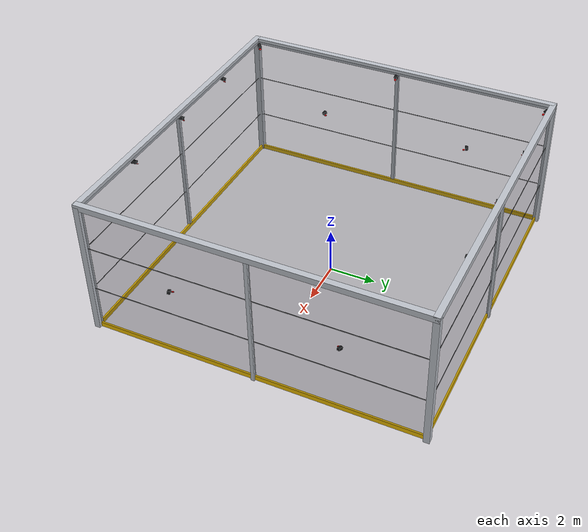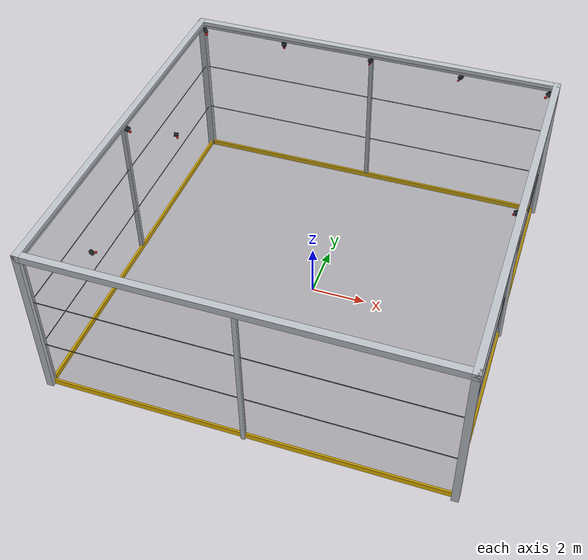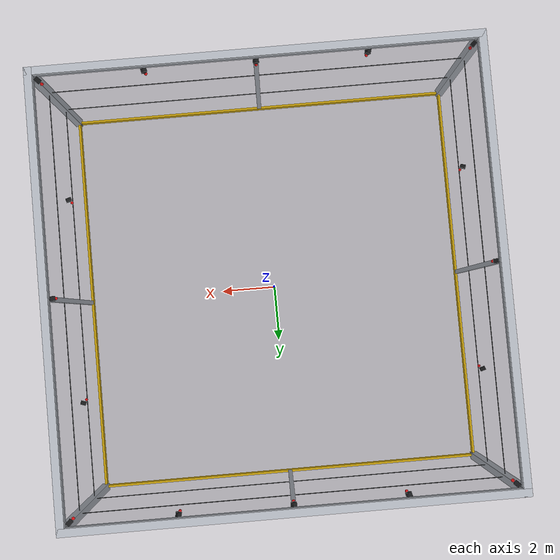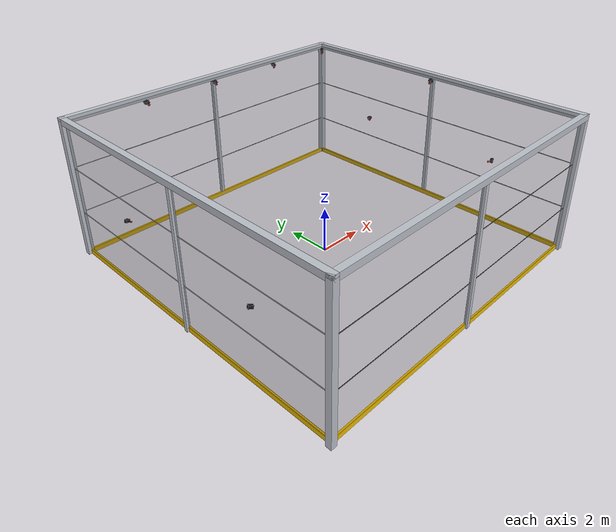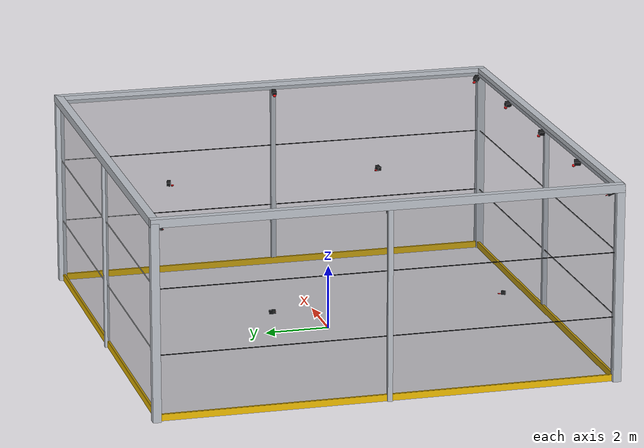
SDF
<sdf version="1.9">
 <world name="bicopter_world">
  <model name="drone_flight_net_cage">
   <static>true</static>
   <link name="link">
    <collision name="t_ne_col">
     <pose>7.0 7.0 3.0 0 0 0</pose>
     <geometry><box><size>0.25 0.25 6.0</size></box></geometry>
    </collision>
    <visual name="t_ne">
     <pose>7.0 7.0 3.0 0 0 0</pose>
     <geometry><box><size>0.25 0.25 6.0</size></box></geometry>
     <material>
      <ambient>0.75 0.77 0.80 1</ambient>
      <diffuse>0.75 0.77 0.80 1</diffuse>
      <specular>0.7 0.7 0.7 1</specular>
     </material>
    </visual>
    <collision name="t_nw_col">
     <pose>-7.0 7.0 3.0 0 0 0</pose>
     <geometry><box><size>0.25 0.25 6.0</size></box></geometry>
    </collision>
    <visual name="t_nw">
     <pose>-7.0 7.0 3.0 0 0 0</pose>
     <geometry><box><size>0.25 0.25 6.0</size></box></geometry>
     <material>
      <ambient>0.75 0.77 0.80 1</ambient>
      <diffuse>0.75 0.77 0.80 1</diffuse>
      <specular>0.7 0.7 0.7 1</specular>
     </material>
    </visual>
    <collision name="t_se_col">
     <pose>7.0 -7.0 3.0 0 0 0</pose>
     <geometry><box><size>0.25 0.25 6.0</size></box></geometry>
    </collision>
    <visual name="t_se">
     <pose>7.0 -7.0 3.0 0 0 0</pose>
     <geometry><box><size>0.25 0.25 6.0</size></box></geometry>
     <material>
      <ambient>0.75 0.77 0.80 1</ambient>
      <diffuse>0.75 0.77 0.80 1</diffuse>
      <specular>0.7 0.7 0.7 1</specular>
     </material>
    </visual>
    <collision name="t_sw_col">
     <pose>-7.0 -7.0 3.0 0 0 0</pose>
     <geometry><box><size>0.25 0.25 6.0</size></box></geometry>
    </collision>
    <visual name="t_sw">
     <pose>-7.0 -7.0 3.0 0 0 0</pose>
     <geometry><box><size>0.25 0.25 6.0</size></box></geometry>
     <material>
      <ambient>0.75 0.77 0.80 1</ambient>
      <diffuse>0.75 0.77 0.80 1</diffuse>
      <specular>0.7 0.7 0.7 1</specular>
     </material>
    </visual>
    <visual name="t_mid_n">
     <pose>0 7.0 3.0 0 0 0</pose>
     <geometry><box><size>0.15 0.15 6.0</size></box></geometry>
     <material><ambient>0.75 0.77 0.80 1</ambient><diffuse>0.75 0.77 0.80 1</diffuse></material>
    </visual>
    <visual name="t_mid_s">
     <pose>0 -7.0 3.0 0 0 0</pose>
     <geometry><box><size>0.15 0.15 6.0</size></box></geometry>
     <material><ambient>0.75 0.77 0.80 1</ambient><diffuse>0.75 0.77 0.80 1</diffuse></material>
    </visual>
    <visual name="t_mid_e">
     <pose>7.0 0 3.0 0 0 0</pose>
     <geometry><box><size>0.15 0.15 6.0</size></box></geometry>
     <material><ambient>0.75 0.77 0.80 1</ambient><diffuse>0.75 0.77 0.80 1</diffuse></material>
    </visual>
    <visual name="t_mid_w">
     <pose>-7.0 0 3.0 0 0 0</pose>
     <geometry><box><size>0.15 0.15 6.0</size></box></geometry>
     <material><ambient>0.75 0.77 0.80 1</ambient><diffuse>0.75 0.77 0.80 1</diffuse></material>
    </visual>
    <collision name="truss_ring_n">
     <pose>0 7.0 6.0 0 0 0</pose>
     <geometry><box><size>14.25 0.25 0.25</size></box></geometry>
    </collision>
    <visual name="truss_rn">
     <pose>0 7.0 6.0 0 0 0</pose>
     <geometry><box><size>14.25 0.25 0.25</size></box></geometry>
     <material><ambient>0.75 0.77 0.80 1</ambient><diffuse>0.75 0.77 0.80 1</diffuse></material>
    </visual>
    <collision name="truss_ring_s">
     <pose>0 -7.0 6.0 0 0 0</pose>
     <geometry><box><size>14.25 0.25 0.25</size></box></geometry>
    </collision>
    <visual name="truss_rs">
     <pose>0 -7.0 6.0 0 0 0</pose>
     <geometry><box><size>14.25 0.25 0.25</size></box></geometry>
     <material><ambient>0.75 0.77 0.80 1</ambient><diffuse>0.75 0.77 0.80 1</diffuse></material>
    </visual>
    <collision name="truss_ring_e">
     <pose>7.0 0 6.0 0 0 0</pose>
     <geometry><box><size>0.25 14.25 0.25</size></box></geometry>
    </collision>
    <visual name="truss_re">
     <pose>7.0 0 6.0 0 0 0</pose>
     <geometry><box><size>0.25 14.25 0.25</size></box></geometry>
     <material><ambient>0.75 0.77 0.80 1</ambient><diffuse>0.75 0.77 0.80 1</diffuse></material>
    </visual>
    <collision name="truss_ring_w">
     <pose>-7.0 0 6.0 0 0 0</pose>
     <geometry><box><size>0.25 14.25 0.25</size></box></geometry>
    </collision>
    <visual name="truss_rw">
     <pose>-7.0 0 6.0 0 0 0</pose>
     <geometry><box><size>0.25 14.25 0.25</size></box></geometry>
     <material><ambient>0.75 0.77 0.80 1</ambient><diffuse>0.75 0.77 0.80 1</diffuse></material>
    </visual>
    <visual name="net_north">
     <pose>0 6.98 2.95 0 0 0</pose>
     <geometry><box><size>13.8 0.01 5.9</size></box></geometry>
     <material><ambient>0.15 0.17 0.20 0.26</ambient><diffuse>0.15 0.17 0.20 0.26</diffuse></material>
    </visual>
    <visual name="net_east">
     <pose>6.98 0 2.95 0 0 0</pose>
     <geometry><box><size>0.01 13.8 5.9</size></box></geometry>
     <material><ambient>0.15 0.17 0.20 0.26</ambient><diffuse>0.15 0.17 0.20 0.26</diffuse></material>
    </visual>
    <visual name="net_west">
     <pose>-6.98 0 2.95 0 0 0</pose>
     <geometry><box><size>0.01 13.8 5.9</size></box></geometry>
     <material><ambient>0.15 0.17 0.20 0.26</ambient><diffuse>0.15 0.17 0.20 0.26</diffuse></material>
    </visual>
    <visual name="net_south">
     <pose>0 -6.98 2.95 0 0 0</pose>
     <geometry><box><size>13.8 0.01 5.9</size></box></geometry>
     <material><ambient>0.18 0.20 0.22 0.20</ambient><diffuse>0.18 0.20 0.22 0.20</diffuse></material>
    </visual>
    <visual name="net_top">
     <pose>0 0 5.98 0 0 0</pose>
     <geometry><box><size>13.8 13.8 0.01</size></box></geometry>
     <material><ambient>0.15 0.17 0.20 0.18</ambient><diffuse>0.15 0.17 0.20 0.18</diffuse></material>
    </visual>
    <visual name="cab_n1">
     <pose>0 6.97 2.0 0 0 0</pose>
     <geometry><box><size>13.8 0.02 0.02</size></box></geometry>
     <material><ambient>0.1 0.1 0.1 1</ambient><diffuse>0.1 0.1 0.1 1</diffuse></material>
    </visual>
    <visual name="cab_n2">
     <pose>0 6.97 4.0 0 0 0</pose>
     <geometry><box><size>13.8 0.02 0.02</size></box></geometry>
     <material><ambient>0.1 0.1 0.1 1</ambient><diffuse>0.1 0.1 0.1 1</diffuse></material>
    </visual>
    <visual name="cab_s1">
     <pose>0 -6.97 2.0 0 0 0</pose>
     <geometry><box><size>13.8 0.02 0.02</size></box></geometry>
     <material><ambient>0.1 0.1 0.1 1</ambient><diffuse>0.1 0.1 0.1 1</diffuse></material>
    </visual>
    <visual name="cab_s2">
     <pose>0 -6.97 4.0 0 0 0</pose>
     <geometry><box><size>13.8 0.02 0.02</size></box></geometry>
     <material><ambient>0.1 0.1 0.1 1</ambient><diffuse>0.1 0.1 0.1 1</diffuse></material>
    </visual>
    <visual name="cab_e1">
     <pose>6.97 0 2.0 0 0 0</pose>
     <geometry><box><size>0.02 13.8 0.02</size></box></geometry>
     <material><ambient>0.1 0.1 0.1 1</ambient><diffuse>0.1 0.1 0.1 1</diffuse></material>
    </visual>
    <visual name="cab_e2">
     <pose>6.97 0 4.0 0 0 0</pose>
     <geometry><box><size>0.02 13.8 0.02</size></box></geometry>
     <material><ambient>0.1 0.1 0.1 1</ambient><diffuse>0.1 0.1 0.1 1</diffuse></material>
    </visual>
    <visual name="cab_w1">
     <pose>-6.97 0 2.0 0 0 0</pose>
     <geometry><box><size>0.02 13.8 0.02</size></box></geometry>
     <material><ambient>0.1 0.1 0.1 1</ambient><diffuse>0.1 0.1 0.1 1</diffuse></material>
    </visual>
    <visual name="cab_w2">
     <pose>-6.97 0 4.0 0 0 0</pose>
     <geometry><box><size>0.02 13.8 0.02</size></box></geometry>
     <material><ambient>0.1 0.1 0.1 1</ambient><diffuse>0.1 0.1 0.1 1</diffuse></material>
    </visual>
    <visual name="skirt_n">
     <pose>0 6.96 0.1 0 0 0</pose>
     <geometry><box><size>13.9 0.08 0.2</size></box></geometry>
     <material><ambient>0.95 0.75 0 1</ambient><diffuse>0.95 0.75 0 1</diffuse></material>
    </visual>
    <visual name="skirt_s">
     <pose>0 -6.96 0.1 0 0 0</pose>
     <geometry><box><size>13.9 0.08 0.2</size></box></geometry>
     <material><ambient>0.95 0.75 0 1</ambient><diffuse>0.95 0.75 0 1</diffuse></material>
    </visual>
    <visual name="skirt_e">
     <pose>6.96 0 0.1 0 0 0</pose>
     <geometry><box><size>0.08 13.9 0.2</size></box></geometry>
     <material><ambient>0.95 0.75 0 1</ambient><diffuse>0.95 0.75 0 1</diffuse></material>
    </visual>
    <visual name="skirt_w">
     <pose>-6.96 0 0.1 0 0 0</pose>
     <geometry><box><size>0.08 13.9 0.2</size></box></geometry>
     <material><ambient>0.95 0.75 0 1</ambient><diffuse>0.95 0.75 0 1</diffuse></material>
    </visual>
    <visual name="c1_b">
     <pose>6.8 6.8 5.8 0 0.5 -2.356</pose>
     <geometry><box><size>0.20 0.14 0.14</size></box></geometry>
     <material><ambient>0.1 0.1 0.1 1</ambient><diffuse>0.1 0.1 0.1 1</diffuse></material>
    </visual>
    <visual name="c1_ir">
     <pose>6.7 6.7 5.7 0 0.5 -2.356</pose>
     <geometry><cylinder><radius>0.05</radius><length>0.02</length></cylinder></geometry>
     <material>
      <ambient>1 0.05 0.05 1</ambient>
      <diffuse>1 0.05 0.05 1</diffuse>
      <emissive>1 0.05 0.05 1</emissive>
     </material>
    </visual>
    <visual name="c2_b">
     <pose>-6.8 6.8 5.8 0 0.5 -0.785</pose>
     <geometry><box><size>0.20 0.14 0.14</size></box></geometry>
     <material><ambient>0.1 0.1 0.1 1</ambient><diffuse>0.1 0.1 0.1 1</diffuse></material>
    </visual>
    <visual name="c2_ir">
     <pose>-6.7 6.7 5.7 0 0.5 -0.785</pose>
     <geometry><cylinder><radius>0.05</radius><length>0.02</length></cylinder></geometry>
     <material>
      <ambient>1 0.05 0.05 1</ambient>
      <diffuse>1 0.05 0.05 1</diffuse>
      <emissive>1 0.05 0.05 1</emissive>
     </material>
    </visual>
    <visual name="c3_b">
     <pose>6.8 -6.8 5.8 0 0.5 2.356</pose>
     <geometry><box><size>0.20 0.14 0.14</size></box></geometry>
     <material><ambient>0.1 0.1 0.1 1</ambient><diffuse>0.1 0.1 0.1 1</diffuse></material>
    </visual>
    <visual name="c3_ir">
     <pose>6.7 -6.7 5.7 0 0.5 2.356</pose>
     <geometry><cylinder><radius>0.05</radius><length>0.02</length></cylinder></geometry>
     <material>
      <ambient>1 0.05 0.05 1</ambient>
      <diffuse>1 0.05 0.05 1</diffuse>
      <emissive>1 0.05 0.05 1</emissive>
     </material>
    </visual>
    <visual name="c4_b">
     <pose>-6.8 -6.8 5.8 0 0.5 0.785</pose>
     <geometry><box><size>0.20 0.14 0.14</size></box></geometry>
     <material><ambient>0.1 0.1 0.1 1</ambient><diffuse>0.1 0.1 0.1 1</diffuse></material>
    </visual>
    <visual name="c4_ir">
     <pose>-6.7 -6.7 5.7 0 0.5 0.785</pose>
     <geometry><cylinder><radius>0.05</radius><length>0.02</length></cylinder></geometry>
     <material>
      <ambient>1 0.05 0.05 1</ambient>
      <diffuse>1 0.05 0.05 1</diffuse>
      <emissive>1 0.05 0.05 1</emissive>
     </material>
    </visual>
    <visual name="c5_b">
     <pose>0 6.85 5.8 0.5 0 -1.5708</pose>
     <geometry><box><size>0.20 0.14 0.14</size></box></geometry>
     <material><ambient>0.1 0.1 0.1 1</ambient><diffuse>0.1 0.1 0.1 1</diffuse></material>
    </visual>
    <visual name="c5_ir">
     <pose>0 6.75 5.7 0.5 0 -1.5708</pose>
     <geometry><cylinder><radius>0.05</radius><length>0.02</length></cylinder></geometry>
     <material>
      <ambient>1 0.05 0.05 1</ambient>
      <diffuse>1 0.05 0.05 1</diffuse>
      <emissive>1 0.05 0.05 1</emissive>
     </material>
    </visual>
    <visual name="c6_b">
     <pose>0 -6.85 5.8 -0.5 0 1.5708</pose>
     <geometry><box><size>0.20 0.14 0.14</size></box></geometry>
     <material><ambient>0.1 0.1 0.1 1</ambient><diffuse>0.1 0.1 0.1 1</diffuse></material>
    </visual>
    <visual name="c6_ir">
     <pose>0 -6.75 5.7 -0.5 0 1.5708</pose>
     <geometry><cylinder><radius>0.05</radius><length>0.02</length></cylinder></geometry>
     <material>
      <ambient>1 0.05 0.05 1</ambient>
      <diffuse>1 0.05 0.05 1</diffuse>
      <emissive>1 0.05 0.05 1</emissive>
     </material>
    </visual>
    <visual name="c7_b">
     <pose>6.85 0 5.8 0 0.5 3.1415</pose>
     <geometry><box><size>0.20 0.14 0.14</size></box></geometry>
     <material><ambient>0.1 0.1 0.1 1</ambient><diffuse>0.1 0.1 0.1 1</diffuse></material>
    </visual>
    <visual name="c7_ir">
     <pose>6.75 0 5.7 0 0.5 3.1415</pose>
     <geometry><cylinder><radius>0.05</radius><length>0.02</length></cylinder></geometry>
     <material>
      <ambient>1 0.05 0.05 1</ambient>
      <diffuse>1 0.05 0.05 1</diffuse>
      <emissive>1 0.05 0.05 1</emissive>
     </material>
    </visual>
    <visual name="c8_b">
     <pose>-6.85 0 5.8 0 0.5 0</pose>
     <geometry><box><size>0.20 0.14 0.14</size></box></geometry>
     <material><ambient>0.1 0.1 0.1 1</ambient><diffuse>0.1 0.1 0.1 1</diffuse></material>
    </visual>
    <visual name="c8_ir">
     <pose>-6.75 0 5.7 0 0.5 0</pose>
     <geometry><cylinder><radius>0.05</radius><length>0.02</length></cylinder></geometry>
     <material>
      <ambient>1 0.05 0.05 1</ambient>
      <diffuse>1 0.05 0.05 1</diffuse>
      <emissive>1 0.05 0.05 1</emissive>
     </material>
    </visual>
    <visual name="c9_b">
     <pose>3.5 6.85 5.8 0.5 0 -1.8</pose>
     <geometry><box><size>0.20 0.14 0.14</size></box></geometry>
     <material><ambient>0.1 0.1 0.1 1</ambient><diffuse>0.1 0.1 0.1 1</diffuse></material>
    </visual>
    <visual name="c9_ir">
     <pose>3.45 6.75 5.7 0.5 0 -1.8</pose>
     <geometry><cylinder><radius>0.05</radius><length>0.02</length></cylinder></geometry>
     <material>
      <ambient>1 0.05 0.05 1</ambient>
      <diffuse>1 0.05 0.05 1</diffuse>
      <emissive>1 0.05 0.05 1</emissive>
     </material>
    </visual>
    <visual name="c10_b">
     <pose>-3.5 6.85 5.8 0.5 0 -1.3</pose>
     <geometry><box><size>0.20 0.14 0.14</size></box></geometry>
     <material><ambient>0.1 0.1 0.1 1</ambient><diffuse>0.1 0.1 0.1 1</diffuse></material>
    </visual>
    <visual name="c10_ir">
     <pose>-3.45 6.75 5.7 0.5 0 -1.3</pose>
     <geometry><cylinder><radius>0.05</radius><length>0.02</length></cylinder></geometry>
     <material>
      <ambient>1 0.05 0.05 1</ambient>
      <diffuse>1 0.05 0.05 1</diffuse>
      <emissive>1 0.05 0.05 1</emissive>
     </material>
    </visual>
    <visual name="c11_b">
     <pose>3.5 -6.85 5.8 -0.5 0 1.8</pose>
     <geometry><box><size>0.20 0.14 0.14</size></box></geometry>
     <material><ambient>0.1 0.1 0.1 1</ambient><diffuse>0.1 0.1 0.1 1</diffuse></material>
    </visual>
    <visual name="c11_ir">
     <pose>3.45 -6.75 5.7 -0.5 0 1.8</pose>
     <geometry><cylinder><radius>0.05</radius><length>0.02</length></cylinder></geometry>
     <material>
      <ambient>1 0.05 0.05 1</ambient>
      <diffuse>1 0.05 0.05 1</diffuse>
      <emissive>1 0.05 0.05 1</emissive>
     </material>
    </visual>
    <visual name="c12_b">
     <pose>-3.5 -6.85 5.8 -0.5 0 1.3</pose>
     <geometry><box><size>0.20 0.14 0.14</size></box></geometry>
     <material><ambient>0.1 0.1 0.1 1</ambient><diffuse>0.1 0.1 0.1 1</diffuse></material>
    </visual>
    <visual name="c12_ir">
     <pose>-3.45 -6.75 5.7 -0.5 0 1.3</pose>
     <geometry><cylinder><radius>0.05</radius><length>0.02</length></cylinder></geometry>
     <material>
      <ambient>1 0.05 0.05 1</ambient>
      <diffuse>1 0.05 0.05 1</diffuse>
      <emissive>1 0.05 0.05 1</emissive>
     </material>
    </visual>
    <visual name="c13_b">
     <pose>6.85 3.5 3.0 0 0.25 2.8</pose>
     <geometry><box><size>0.18 0.12 0.12</size></box></geometry>
     <material><ambient>0.1 0.1 0.1 1</ambient><diffuse>0.1 0.1 0.1 1</diffuse></material>
    </visual>
    <visual name="c13_ir">
     <pose>6.75 3.4 2.95 0 0.25 2.8</pose>
     <geometry><cylinder><radius>0.045</radius><length>0.02</length></cylinder></geometry>
     <material>
      <ambient>1 0.05 0.05 1</ambient>
      <diffuse>1 0.05 0.05 1</diffuse>
      <emissive>1 0.05 0.05 1</emissive>
     </material>
    </visual>
    <visual name="c14_b">
     <pose>6.85 -3.5 3.0 0 0.25 -2.8</pose>
     <geometry><box><size>0.18 0.12 0.12</size></box></geometry>
     <material><ambient>0.1 0.1 0.1 1</ambient><diffuse>0.1 0.1 0.1 1</diffuse></material>
    </visual>
    <visual name="c14_ir">
     <pose>6.75 -3.4 2.95 0 0.25 -2.8</pose>
     <geometry><cylinder><radius>0.045</radius><length>0.02</length></cylinder></geometry>
     <material>
      <ambient>1 0.05 0.05 1</ambient>
      <diffuse>1 0.05 0.05 1</diffuse>
      <emissive>1 0.05 0.05 1</emissive>
     </material>
    </visual>
    <visual name="c15_b">
     <pose>-6.85 3.5 3.0 0 0.25 0.35</pose>
     <geometry><box><size>0.18 0.12 0.12</size></box></geometry>
     <material><ambient>0.1 0.1 0.1 1</ambient><diffuse>0.1 0.1 0.1 1</diffuse></material>
    </visual>
    <visual name="c15_ir">
     <pose>-6.75 3.4 2.95 0 0.25 0.35</pose>
     <geometry><cylinder><radius>0.045</radius><length>0.02</length></cylinder></geometry>
     <material>
      <ambient>1 0.05 0.05 1</ambient>
      <diffuse>1 0.05 0.05 1</diffuse>
      <emissive>1 0.05 0.05 1</emissive>
     </material>
    </visual>
    <visual name="c16_b">
     <pose>-6.85 -3.5 3.0 0 0.25 -0.35</pose>
     <geometry><box><size>0.18 0.12 0.12</size></box></geometry>
     <material><ambient>0.1 0.1 0.1 1</ambient><diffuse>0.1 0.1 0.1 1</diffuse></material>
    </visual>
    <visual name="c16_ir">
     <pose>-6.75 -3.4 2.95 0 0.25 -0.35</pose>
     <geometry><cylinder><radius>0.045</radius><length>0.02</length></cylinder></geometry>
     <material>
      <ambient>1 0.05 0.05 1</ambient>
      <diffuse>1 0.05 0.05 1</diffuse>
      <emissive>1 0.05 0.05 1</emissive>
     </material>
    </visual>
   </link>
  </model>
 </world>
</sdf>
